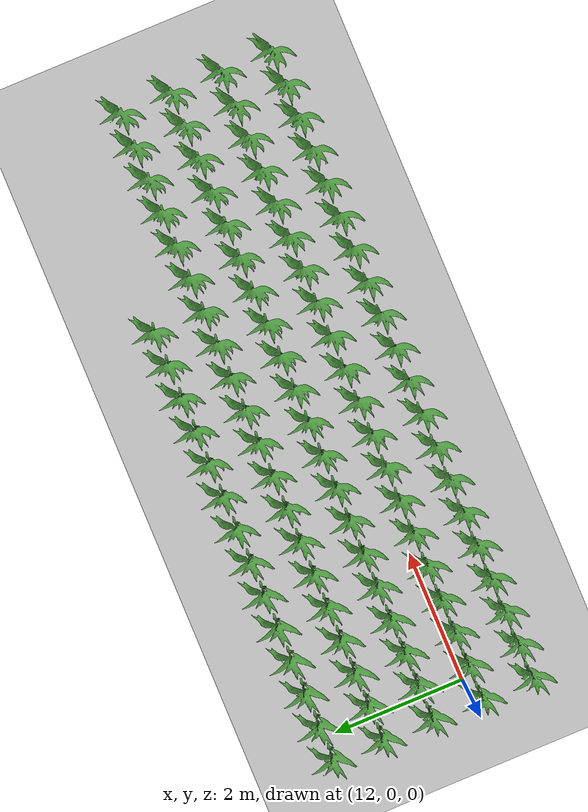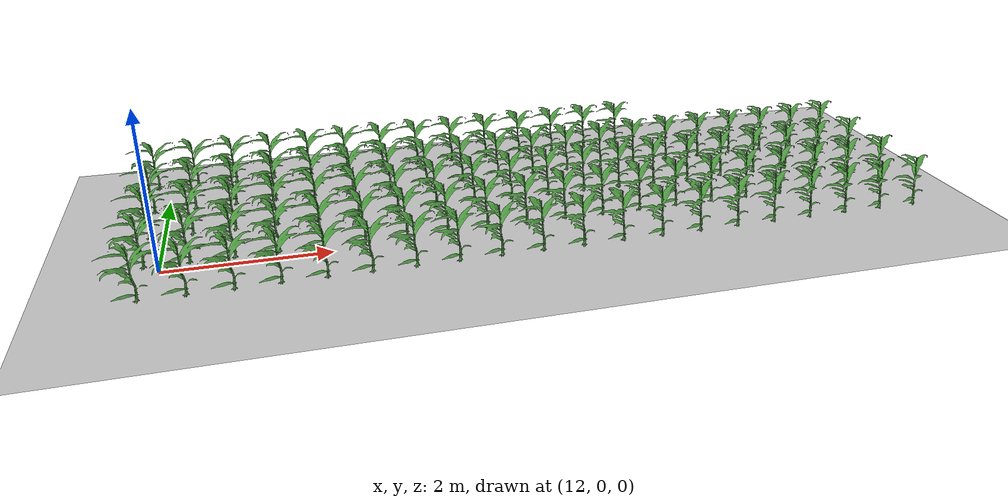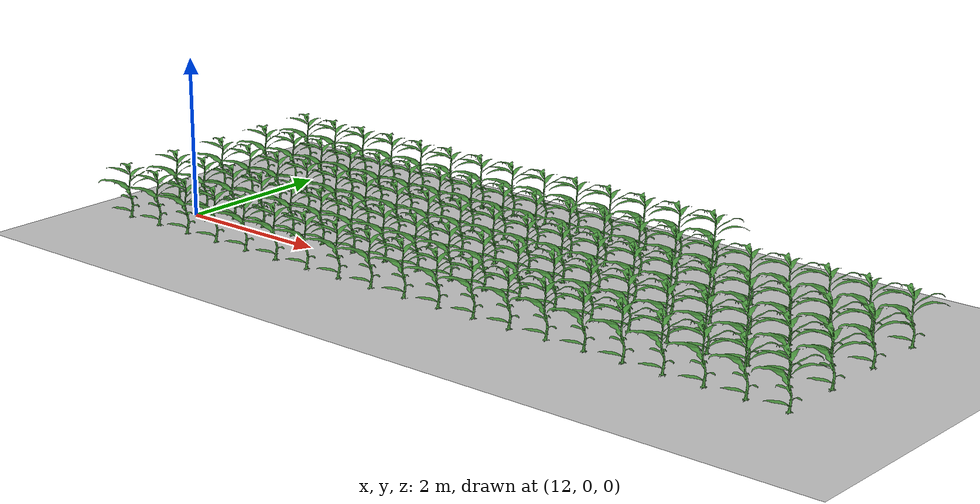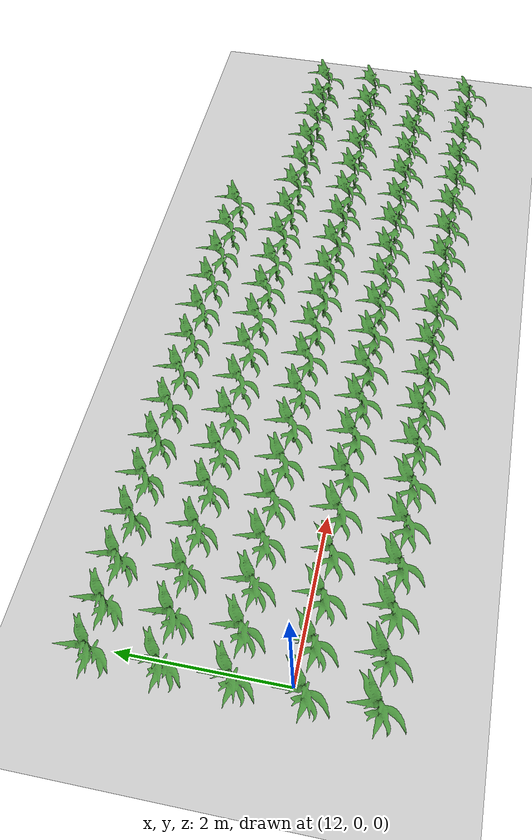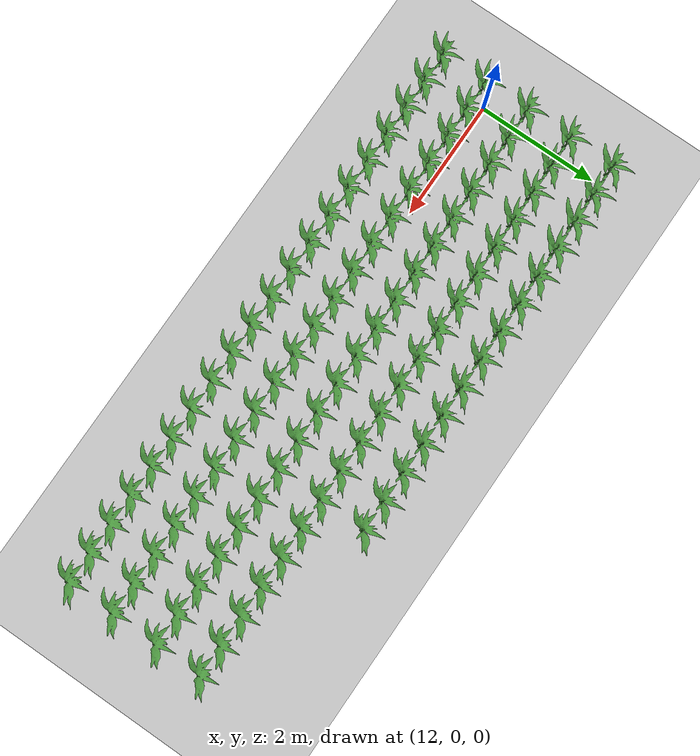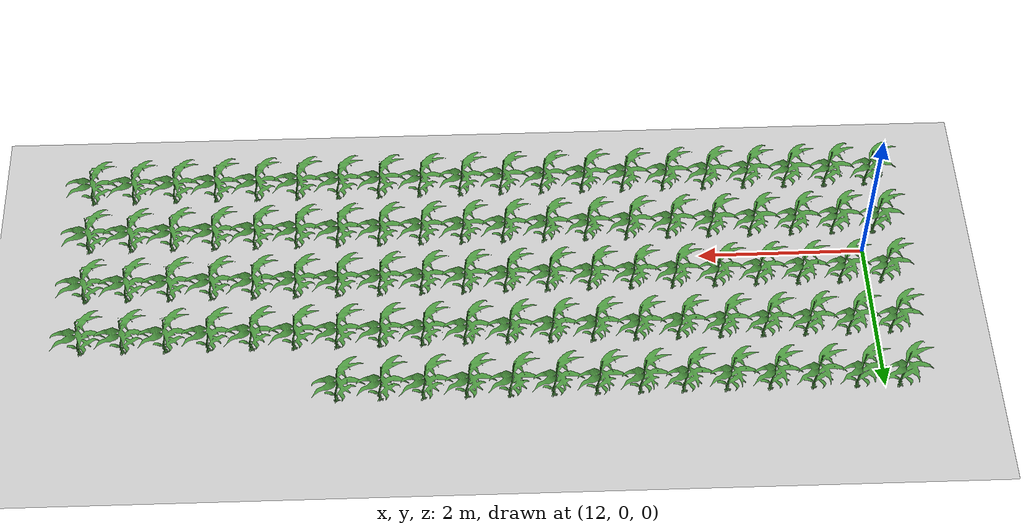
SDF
<sdf version="1.7">
 <world name="default">
  <model name="ground_plane">
   <static>1</static>
   <link name="link">
    <collision name="collision">
     <geometry><plane><normal>0 0 1</normal><size>100 100</size></plane></geometry>
     <surface>
      <contact><collide_bitmask>65535</collide_bitmask></contact>
      <friction><ode><mu>100</mu><mu2>50</mu2></ode></friction>
     </surface>
    </collision>
    <visual name="visual">
     <cast_shadows>0</cast_shadows>
     <geometry><plane><normal>0 0 1</normal><size>100 100</size></plane></geometry>
     <material>
      <script><uri>file://media/materials/scripts/gazebo.material</uri><name>Gazebo/Grey</name></script>
     </material>
    </visual>
   </link>
  </model>
  <model name="bush_1_nc_20">
   <static>1</static>
   <link name="link">
    <visual name="visual">
     <geometry>
      <mesh><uri>model://corn_stalk/meshes/corn_1.obj</uri><scale>0.002 0.002 0.001</scale></mesh>
     </geometry>
     <material>
      <script><uri>file://media/materials/scripts/gazebo.material</uri><name>Gazebo/Grass</name></script>
     </material>
    </visual>
   </link>
   <pose>10.0 0.762 0.171977 0 -0 0</pose>
  </model>
  <model name="bush_1_nc_21">
   <static>1</static>
   <link name="link">
    <visual name="visual">
     <geometry>
      <mesh><uri>model://corn_stalk/meshes/corn_1.obj</uri><scale>0.002 0.002 0.001</scale></mesh>
     </geometry>
     <material>
      <script><uri>file://media/materials/scripts/gazebo.material</uri><name>Gazebo/Grass</name></script>
     </material>
    </visual>
   </link>
   <pose>10.5 0.762 0.171977 0 -0 0</pose>
  </model>
  <model name="bush_1_nc_22">
   <static>1</static>
   <link name="link">
    <visual name="visual">
     <geometry>
      <mesh><uri>model://corn_stalk/meshes/corn_1.obj</uri><scale>0.002 0.002 0.001</scale></mesh>
     </geometry>
     <material>
      <script><uri>file://media/materials/scripts/gazebo.material</uri><name>Gazebo/Grass</name></script>
     </material>
    </visual>
   </link>
   <pose>11.0 0.762 0.171977 0 -0 0</pose>
  </model>
  <model name="bush_1_nc_23">
   <static>1</static>
   <link name="link">
    <visual name="visual">
     <geometry>
      <mesh><uri>model://corn_stalk/meshes/corn_1.obj</uri><scale>0.002 0.002 0.001</scale></mesh>
     </geometry>
     <material>
      <script><uri>file://media/materials/scripts/gazebo.material</uri><name>Gazebo/Grass</name></script>
     </material>
    </visual>
   </link>
   <pose>11.5 0.762 0.171977 0 -0 0</pose>
  </model>
  <model name="bush_1_nc_24">
   <static>1</static>
   <link name="link">
    <visual name="visual">
     <geometry>
      <mesh><uri>model://corn_stalk/meshes/corn_1.obj</uri><scale>0.002 0.002 0.001</scale></mesh>
     </geometry>
     <material>
      <script><uri>file://media/materials/scripts/gazebo.material</uri><name>Gazebo/Grass</name></script>
     </material>
    </visual>
   </link>
   <pose>12.0 0.762 0.171977 0 -0 0</pose>
  </model>
  <model name="bush_1_nc_25">
   <static>1</static>
   <link name="link">
    <visual name="visual">
     <geometry>
      <mesh><uri>model://corn_stalk/meshes/corn_1.obj</uri><scale>0.002 0.002 0.001</scale></mesh>
     </geometry>
     <material>
      <script><uri>file://media/materials/scripts/gazebo.material</uri><name>Gazebo/Grass</name></script>
     </material>
    </visual>
   </link>
   <pose>12.5 0.762 0.171977 0 -0 0</pose>
  </model>
  <model name="bush_1_nc_26">
   <static>1</static>
   <link name="link">
    <visual name="visual">
     <geometry>
      <mesh><uri>model://corn_stalk/meshes/corn_1.obj</uri><scale>0.002 0.002 0.001</scale></mesh>
     </geometry>
     <material>
      <script><uri>file://media/materials/scripts/gazebo.material</uri><name>Gazebo/Grass</name></script>
     </material>
    </visual>
   </link>
   <pose>13.0 0.762 0.171977 0 -0 0</pose>
  </model>
  <model name="bush_1_nc_27">
   <static>1</static>
   <link name="link">
    <visual name="visual">
     <geometry>
      <mesh><uri>model://corn_stalk/meshes/corn_1.obj</uri><scale>0.002 0.002 0.001</scale></mesh>
     </geometry>
     <material>
      <script><uri>file://media/materials/scripts/gazebo.material</uri><name>Gazebo/Grass</name></script>
     </material>
    </visual>
   </link>
   <pose>13.5 0.762 0.171977 0 -0 0</pose>
  </model>
  <model name="bush_1_nc_28">
   <static>1</static>
   <link name="link">
    <visual name="visual">
     <geometry>
      <mesh><uri>model://corn_stalk/meshes/corn_1.obj</uri><scale>0.002 0.002 0.001</scale></mesh>
     </geometry>
     <material>
      <script><uri>file://media/materials/scripts/gazebo.material</uri><name>Gazebo/Grass</name></script>
     </material>
    </visual>
   </link>
   <pose>14.0 0.762 0.171977 0 -0 0</pose>
  </model>
  <model name="bush_1_nc_29">
   <static>1</static>
   <link name="link">
    <visual name="visual">
     <geometry>
      <mesh><uri>model://corn_stalk/meshes/corn_1.obj</uri><scale>0.002 0.002 0.001</scale></mesh>
     </geometry>
     <material>
      <script><uri>file://media/materials/scripts/gazebo.material</uri><name>Gazebo/Grass</name></script>
     </material>
    </visual>
   </link>
   <pose>14.5 0.762 0.171977 0 -0 0</pose>
  </model>
  <model name="bush_1_nc_30">
   <static>1</static>
   <link name="link">
    <visual name="visual">
     <geometry>
      <mesh><uri>model://corn_stalk/meshes/corn_1.obj</uri><scale>0.002 0.002 0.001</scale></mesh>
     </geometry>
     <material>
      <script><uri>file://media/materials/scripts/gazebo.material</uri><name>Gazebo/Grass</name></script>
     </material>
    </visual>
   </link>
   <pose>15.0 0.762 0.171977 0 -0 0</pose>
  </model>
  <model name="bush_1_nc_31">
   <static>1</static>
   <link name="link">
    <visual name="visual">
     <geometry>
      <mesh><uri>model://corn_stalk/meshes/corn_1.obj</uri><scale>0.002 0.002 0.001</scale></mesh>
     </geometry>
     <material>
      <script><uri>file://media/materials/scripts/gazebo.material</uri><name>Gazebo/Grass</name></script>
     </material>
    </visual>
   </link>
   <pose>15.5 0.762 0.171977 0 -0 0</pose>
  </model>
  <model name="bush_1_nc_32">
   <static>1</static>
   <link name="link">
    <visual name="visual">
     <geometry>
      <mesh><uri>model://corn_stalk/meshes/corn_1.obj</uri><scale>0.002 0.002 0.001</scale></mesh>
     </geometry>
     <material>
      <script><uri>file://media/materials/scripts/gazebo.material</uri><name>Gazebo/Grass</name></script>
     </material>
    </visual>
   </link>
   <pose>16.0 0.762 0.171977 0 -0 0</pose>
  </model>
  <model name="bush_1_nc_33">
   <static>1</static>
   <link name="link">
    <visual name="visual">
     <geometry>
      <mesh><uri>model://corn_stalk/meshes/corn_1.obj</uri><scale>0.002 0.002 0.001</scale></mesh>
     </geometry>
     <material>
      <script><uri>file://media/materials/scripts/gazebo.material</uri><name>Gazebo/Grass</name></script>
     </material>
    </visual>
   </link>
   <pose>16.5 0.762 0.171977 0 -0 0</pose>
  </model>
  <model name="bush_1_nc_34">
   <static>1</static>
   <link name="link">
    <visual name="visual">
     <geometry>
      <mesh><uri>model://corn_stalk/meshes/corn_1.obj</uri><scale>0.002 0.002 0.001</scale></mesh>
     </geometry>
     <material>
      <script><uri>file://media/materials/scripts/gazebo.material</uri><name>Gazebo/Grass</name></script>
     </material>
    </visual>
   </link>
   <pose>17.0 0.762 0.171977 0 -0 0</pose>
  </model>
  <model name="bush_1_nc_35">
   <static>1</static>
   <link name="link">
    <visual name="visual">
     <geometry>
      <mesh><uri>model://corn_stalk/meshes/corn_1.obj</uri><scale>0.002 0.002 0.001</scale></mesh>
     </geometry>
     <material>
      <script><uri>file://media/materials/scripts/gazebo.material</uri><name>Gazebo/Grass</name></script>
     </material>
    </visual>
   </link>
   <pose>17.5 0.762 0.171977 0 -0 0</pose>
  </model>
  <model name="bush_1_nc_36">
   <static>1</static>
   <link name="link">
    <visual name="visual">
     <geometry>
      <mesh><uri>model://corn_stalk/meshes/corn_1.obj</uri><scale>0.002 0.002 0.001</scale></mesh>
     </geometry>
     <material>
      <script><uri>file://media/materials/scripts/gazebo.material</uri><name>Gazebo/Grass</name></script>
     </material>
    </visual>
   </link>
   <pose>18.0 0.762 0.171977 0 -0 0</pose>
  </model>
  <model name="bush_1_nc_37">
   <static>1</static>
   <link name="link">
    <visual name="visual">
     <geometry>
      <mesh><uri>model://corn_stalk/meshes/corn_1.obj</uri><scale>0.002 0.002 0.001</scale></mesh>
     </geometry>
     <material>
      <script><uri>file://media/materials/scripts/gazebo.material</uri><name>Gazebo/Grass</name></script>
     </material>
    </visual>
   </link>
   <pose>18.5 0.762 0.171977 0 -0 0</pose>
  </model>
  <model name="bush_1_nc_38">
   <static>1</static>
   <link name="link">
    <visual name="visual">
     <geometry>
      <mesh><uri>model://corn_stalk/meshes/corn_1.obj</uri><scale>0.002 0.002 0.001</scale></mesh>
     </geometry>
     <material>
      <script><uri>file://media/materials/scripts/gazebo.material</uri><name>Gazebo/Grass</name></script>
     </material>
    </visual>
   </link>
   <pose>19.0 0.762 0.171977 0 -0 0</pose>
  </model>
  <model name="bush_1_nc_39">
   <static>1</static>
   <link name="link">
    <visual name="visual">
     <geometry>
      <mesh><uri>model://corn_stalk/meshes/corn_1.obj</uri><scale>0.002 0.002 0.001</scale></mesh>
     </geometry>
     <material>
      <script><uri>file://media/materials/scripts/gazebo.material</uri><name>Gazebo/Grass</name></script>
     </material>
    </visual>
   </link>
   <pose>19.5 0.762 0.171977 0 -0 0</pose>
  </model>
  <model name="bush_1_nc_60">
   <static>1</static>
   <link name="link">
    <visual name="visual">
     <geometry>
      <mesh><uri>model://corn_stalk/meshes/corn_1.obj</uri><scale>0.002 0.002 0.001</scale></mesh>
     </geometry>
     <material>
      <script><uri>file://media/materials/scripts/gazebo.material</uri><name>Gazebo/Grass</name></script>
     </material>
    </visual>
   </link>
   <pose>10.0 1.524 0.171977 0 -0 0</pose>
  </model>
  <model name="bush_1_nc_61">
   <static>1</static>
   <link name="link">
    <visual name="visual">
     <geometry>
      <mesh><uri>model://corn_stalk/meshes/corn_1.obj</uri><scale>0.002 0.002 0.001</scale></mesh>
     </geometry>
     <material>
      <script><uri>file://media/materials/scripts/gazebo.material</uri><name>Gazebo/Grass</name></script>
     </material>
    </visual>
   </link>
   <pose>10.5 1.524 0.171977 0 -0 0</pose>
  </model>
  <model name="bush_1_nc_62">
   <static>1</static>
   <link name="link">
    <visual name="visual">
     <geometry>
      <mesh><uri>model://corn_stalk/meshes/corn_1.obj</uri><scale>0.002 0.002 0.001</scale></mesh>
     </geometry>
     <material>
      <script><uri>file://media/materials/scripts/gazebo.material</uri><name>Gazebo/Grass</name></script>
     </material>
    </visual>
   </link>
   <pose>11.0 1.524 0.171977 0 -0 0</pose>
  </model>
  <model name="bush_1_nc_63">
   <static>1</static>
   <link name="link">
    <visual name="visual">
     <geometry>
      <mesh><uri>model://corn_stalk/meshes/corn_1.obj</uri><scale>0.002 0.002 0.001</scale></mesh>
     </geometry>
     <material>
      <script><uri>file://media/materials/scripts/gazebo.material</uri><name>Gazebo/Grass</name></script>
     </material>
    </visual>
   </link>
   <pose>11.5 1.524 0.171977 0 -0 0</pose>
  </model>
  <model name="bush_1_nc_64">
   <static>1</static>
   <link name="link">
    <visual name="visual">
     <geometry>
      <mesh><uri>model://corn_stalk/meshes/corn_1.obj</uri><scale>0.002 0.002 0.001</scale></mesh>
     </geometry>
     <material>
      <script><uri>file://media/materials/scripts/gazebo.material</uri><name>Gazebo/Grass</name></script>
     </material>
    </visual>
   </link>
   <pose>12.0 1.524 0.171977 0 -0 0</pose>
  </model>
  <model name="bush_1_nc_65">
   <static>1</static>
   <link name="link">
    <visual name="visual">
     <geometry>
      <mesh><uri>model://corn_stalk/meshes/corn_1.obj</uri><scale>0.002 0.002 0.001</scale></mesh>
     </geometry>
     <material>
      <script><uri>file://media/materials/scripts/gazebo.material</uri><name>Gazebo/Grass</name></script>
     </material>
    </visual>
   </link>
   <pose>12.5 1.524 0.171977 0 -0 0</pose>
  </model>
  <model name="bush_1_nc_66">
   <static>1</static>
   <link name="link">
    <visual name="visual">
     <geometry>
      <mesh><uri>model://corn_stalk/meshes/corn_1.obj</uri><scale>0.002 0.002 0.001</scale></mesh>
     </geometry>
     <material>
      <script><uri>file://media/materials/scripts/gazebo.material</uri><name>Gazebo/Grass</name></script>
     </material>
    </visual>
   </link>
   <pose>13.0 1.524 0.171977 0 -0 0</pose>
  </model>
  <model name="bush_1_nc_67">
   <static>1</static>
   <link name="link">
    <visual name="visual">
     <geometry>
      <mesh><uri>model://corn_stalk/meshes/corn_1.obj</uri><scale>0.002 0.002 0.001</scale></mesh>
     </geometry>
     <material>
      <script><uri>file://media/materials/scripts/gazebo.material</uri><name>Gazebo/Grass</name></script>
     </material>
    </visual>
   </link>
   <pose>13.5 1.524 0.171977 0 -0 0</pose>
  </model>
  <model name="bush_1_nc_68">
   <static>1</static>
   <link name="link">
    <visual name="visual">
     <geometry>
      <mesh><uri>model://corn_stalk/meshes/corn_1.obj</uri><scale>0.002 0.002 0.001</scale></mesh>
     </geometry>
     <material>
      <script><uri>file://media/materials/scripts/gazebo.material</uri><name>Gazebo/Grass</name></script>
     </material>
    </visual>
   </link>
   <pose>14.0 1.524 0.171977 0 -0 0</pose>
  </model>
  <model name="bush_1_nc_69">
   <static>1</static>
   <link name="link">
    <visual name="visual">
     <geometry>
      <mesh><uri>model://corn_stalk/meshes/corn_1.obj</uri><scale>0.002 0.002 0.001</scale></mesh>
     </geometry>
     <material>
      <script><uri>file://media/materials/scripts/gazebo.material</uri><name>Gazebo/Grass</name></script>
     </material>
    </visual>
   </link>
   <pose>14.5 1.524 0.171977 0 -0 0</pose>
  </model>
  <model name="bush_1_nc_70">
   <static>1</static>
   <link name="link">
    <visual name="visual">
     <geometry>
      <mesh><uri>model://corn_stalk/meshes/corn_1.obj</uri><scale>0.002 0.002 0.001</scale></mesh>
     </geometry>
     <material>
      <script><uri>file://media/materials/scripts/gazebo.material</uri><name>Gazebo/Grass</name></script>
     </material>
    </visual>
   </link>
   <pose>15.0 1.524 0.171977 0 -0 0</pose>
  </model>
  <model name="bush_1_nc_71">
   <static>1</static>
   <link name="link">
    <visual name="visual">
     <geometry>
      <mesh><uri>model://corn_stalk/meshes/corn_1.obj</uri><scale>0.002 0.002 0.001</scale></mesh>
     </geometry>
     <material>
      <script><uri>file://media/materials/scripts/gazebo.material</uri><name>Gazebo/Grass</name></script>
     </material>
    </visual>
   </link>
   <pose>15.5 1.524 0.171977 0 -0 0</pose>
  </model>
  <model name="bush_1_nc_72">
   <static>1</static>
   <link name="link">
    <visual name="visual">
     <geometry>
      <mesh><uri>model://corn_stalk/meshes/corn_1.obj</uri><scale>0.002 0.002 0.001</scale></mesh>
     </geometry>
     <material>
      <script><uri>file://media/materials/scripts/gazebo.material</uri><name>Gazebo/Grass</name></script>
     </material>
    </visual>
   </link>
   <pose>16.0 1.524 0.171977 0 -0 0</pose>
  </model>
  <model name="bush_1_nc_73">
   <static>1</static>
   <link name="link">
    <visual name="visual">
     <geometry>
      <mesh><uri>model://corn_stalk/meshes/corn_1.obj</uri><scale>0.002 0.002 0.001</scale></mesh>
     </geometry>
     <material>
      <script><uri>file://media/materials/scripts/gazebo.material</uri><name>Gazebo/Grass</name></script>
     </material>
    </visual>
   </link>
   <pose>16.5 1.524 0.171977 0 -0 0</pose>
  </model>
  <model name="bush_1_nc_74">
   <static>1</static>
   <link name="link">
    <visual name="visual">
     <geometry>
      <mesh><uri>model://corn_stalk/meshes/corn_1.obj</uri><scale>0.002 0.002 0.001</scale></mesh>
     </geometry>
     <material>
      <script><uri>file://media/materials/scripts/gazebo.material</uri><name>Gazebo/Grass</name></script>
     </material>
    </visual>
   </link>
   <pose>17.0 1.524 0.171977 0 -0 0</pose>
  </model>
  <model name="bush_1_nc_75">
   <static>1</static>
   <link name="link">
    <visual name="visual">
     <geometry>
      <mesh><uri>model://corn_stalk/meshes/corn_1.obj</uri><scale>0.002 0.002 0.001</scale></mesh>
     </geometry>
     <material>
      <script><uri>file://media/materials/scripts/gazebo.material</uri><name>Gazebo/Grass</name></script>
     </material>
    </visual>
   </link>
   <pose>17.5 1.524 0.171977 0 -0 0</pose>
  </model>
  <model name="bush_1_nc_76">
   <static>1</static>
   <link name="link">
    <visual name="visual">
     <geometry>
      <mesh><uri>model://corn_stalk/meshes/corn_1.obj</uri><scale>0.002 0.002 0.001</scale></mesh>
     </geometry>
     <material>
      <script><uri>file://media/materials/scripts/gazebo.material</uri><name>Gazebo/Grass</name></script>
     </material>
    </visual>
   </link>
   <pose>18.0 1.524 0.171977 0 -0 0</pose>
  </model>
  <model name="bush_1_nc_77">
   <static>1</static>
   <link name="link">
    <visual name="visual">
     <geometry>
      <mesh><uri>model://corn_stalk/meshes/corn_1.obj</uri><scale>0.002 0.002 0.001</scale></mesh>
     </geometry>
     <material>
      <script><uri>file://media/materials/scripts/gazebo.material</uri><name>Gazebo/Grass</name></script>
     </material>
    </visual>
   </link>
   <pose>18.5 1.524 0.171977 0 -0 0</pose>
  </model>
  <model name="bush_1_nc_78">
   <static>1</static>
   <link name="link">
    <visual name="visual">
     <geometry>
      <mesh><uri>model://corn_stalk/meshes/corn_1.obj</uri><scale>0.002 0.002 0.001</scale></mesh>
     </geometry>
     <material>
      <script><uri>file://media/materials/scripts/gazebo.material</uri><name>Gazebo/Grass</name></script>
     </material>
    </visual>
   </link>
   <pose>19.0 1.524 0.171977 0 -0 0</pose>
  </model>
  <model name="bush_1_nc_79">
   <static>1</static>
   <link name="link">
    <visual name="visual">
     <geometry>
      <mesh><uri>model://corn_stalk/meshes/corn_1.obj</uri><scale>0.002 0.002 0.001</scale></mesh>
     </geometry>
     <material>
      <script><uri>file://media/materials/scripts/gazebo.material</uri><name>Gazebo/Grass</name></script>
     </material>
    </visual>
   </link>
   <pose>19.5 1.524 0.171977 0 -0 0</pose>
  </model>
  <model name="bush_1_nc_100">
   <static>1</static>
   <link name="link">
    <visual name="visual">
     <geometry>
      <mesh><uri>model://corn_stalk/meshes/corn_1.obj</uri><scale>0.002 0.002 0.001</scale></mesh>
     </geometry>
     <material>
      <script><uri>file://media/materials/scripts/gazebo.material</uri><name>Gazebo/Grass</name></script>
     </material>
    </visual>
   </link>
   <pose>10.0 2.286 0.171977 0 -0 0</pose>
  </model>
  <model name="bush_1_nc_101">
   <static>1</static>
   <link name="link">
    <visual name="visual">
     <geometry>
      <mesh><uri>model://corn_stalk/meshes/corn_1.obj</uri><scale>0.002 0.002 0.001</scale></mesh>
     </geometry>
     <material>
      <script><uri>file://media/materials/scripts/gazebo.material</uri><name>Gazebo/Grass</name></script>
     </material>
    </visual>
   </link>
   <pose>10.5 2.286 0.171977 0 -0 0</pose>
  </model>
  <model name="bush_1_nc_102">
   <static>1</static>
   <link name="link">
    <visual name="visual">
     <geometry>
      <mesh><uri>model://corn_stalk/meshes/corn_1.obj</uri><scale>0.002 0.002 0.001</scale></mesh>
     </geometry>
     <material>
      <script><uri>file://media/materials/scripts/gazebo.material</uri><name>Gazebo/Grass</name></script>
     </material>
    </visual>
   </link>
   <pose>11.0 2.286 0.171977 0 -0 0</pose>
  </model>
  <model name="bush_1_nc_103">
   <static>1</static>
   <link name="link">
    <visual name="visual">
     <geometry>
      <mesh><uri>model://corn_stalk/meshes/corn_1.obj</uri><scale>0.002 0.002 0.001</scale></mesh>
     </geometry>
     <material>
      <script><uri>file://media/materials/scripts/gazebo.material</uri><name>Gazebo/Grass</name></script>
     </material>
    </visual>
   </link>
   <pose>11.5 2.286 0.171977 0 -0 0</pose>
  </model>
  <model name="bush_1_nc_104">
   <static>1</static>
   <link name="link">
    <visual name="visual">
     <geometry>
      <mesh><uri>model://corn_stalk/meshes/corn_1.obj</uri><scale>0.002 0.002 0.001</scale></mesh>
     </geometry>
     <material>
      <script><uri>file://media/materials/scripts/gazebo.material</uri><name>Gazebo/Grass</name></script>
     </material>
    </visual>
   </link>
   <pose>12.0 2.286 0.171977 0 -0 0</pose>
  </model>
  <model name="bush_1_nc_105">
   <static>1</static>
   <link name="link">
    <visual name="visual">
     <geometry>
      <mesh><uri>model://corn_stalk/meshes/corn_1.obj</uri><scale>0.002 0.002 0.001</scale></mesh>
     </geometry>
     <material>
      <script><uri>file://media/materials/scripts/gazebo.material</uri><name>Gazebo/Grass</name></script>
     </material>
    </visual>
   </link>
   <pose>12.5 2.286 0.171977 0 -0 0</pose>
  </model>
  <model name="bush_1_nc_106">
   <static>1</static>
   <link name="link">
    <visual name="visual">
     <geometry>
      <mesh><uri>model://corn_stalk/meshes/corn_1.obj</uri><scale>0.002 0.002 0.001</scale></mesh>
     </geometry>
     <material>
      <script><uri>file://media/materials/scripts/gazebo.material</uri><name>Gazebo/Grass</name></script>
     </material>
    </visual>
   </link>
   <pose>13.0 2.286 0.171977 0 -0 0</pose>
  </model>
  <model name="bush_1_nc_107">
   <static>1</static>
   <link name="link">
    <visual name="visual">
     <geometry>
      <mesh><uri>model://corn_stalk/meshes/corn_1.obj</uri><scale>0.002 0.002 0.001</scale></mesh>
     </geometry>
     <material>
      <script><uri>file://media/materials/scripts/gazebo.material</uri><name>Gazebo/Grass</name></script>
     </material>
    </visual>
   </link>
   <pose>13.5 2.286 0.171977 0 -0 0</pose>
  </model>
  <model name="bush_1_nc_108">
   <static>1</static>
   <link name="link">
    <visual name="visual">
     <geometry>
      <mesh><uri>model://corn_stalk/meshes/corn_1.obj</uri><scale>0.002 0.002 0.001</scale></mesh>
     </geometry>
     <material>
      <script><uri>file://media/materials/scripts/gazebo.material</uri><name>Gazebo/Grass</name></script>
     </material>
    </visual>
   </link>
   <pose>14.0 2.286 0.171977 0 -0 0</pose>
  </model>
  <model name="bush_1_nc_109">
   <static>1</static>
   <link name="link">
    <visual name="visual">
     <geometry>
      <mesh><uri>model://corn_stalk/meshes/corn_1.obj</uri><scale>0.002 0.002 0.001</scale></mesh>
     </geometry>
     <material>
      <script><uri>file://media/materials/scripts/gazebo.material</uri><name>Gazebo/Grass</name></script>
     </material>
    </visual>
   </link>
   <pose>14.5 2.286 0.171977 0 -0 0</pose>
  </model>
  <model name="bush_1_nc_110">
   <static>1</static>
   <link name="link">
    <visual name="visual">
     <geometry>
      <mesh><uri>model://corn_stalk/meshes/corn_1.obj</uri><scale>0.002 0.002 0.001</scale></mesh>
     </geometry>
     <material>
      <script><uri>file://media/materials/scripts/gazebo.material</uri><name>Gazebo/Grass</name></script>
     </material>
    </visual>
   </link>
   <pose>15.0 2.286 0.171977 0 -0 0</pose>
  </model>
  <model name="bush_1_nc_111">
   <static>1</static>
   <link name="link">
    <visual name="visual">
     <geometry>
      <mesh><uri>model://corn_stalk/meshes/corn_1.obj</uri><scale>0.002 0.002 0.001</scale></mesh>
     </geometry>
     <material>
      <script><uri>file://media/materials/scripts/gazebo.material</uri><name>Gazebo/Grass</name></script>
     </material>
    </visual>
   </link>
   <pose>15.5 2.286 0.171977 0 -0 0</pose>
  </model>
  <model name="bush_1_nc_112">
   <static>1</static>
   <link name="link">
    <visual name="visual">
     <geometry>
      <mesh><uri>model://corn_stalk/meshes/corn_1.obj</uri><scale>0.002 0.002 0.001</scale></mesh>
     </geometry>
     <material>
      <script><uri>file://media/materials/scripts/gazebo.material</uri><name>Gazebo/Grass</name></script>
     </material>
    </visual>
   </link>
   <pose>16.0 2.286 0.171977 0 -0 0</pose>
  </model>
  <model name="bush_1_nc_113">
   <static>1</static>
   <link name="link">
    <visual name="visual">
     <geometry>
      <mesh><uri>model://corn_stalk/meshes/corn_1.obj</uri><scale>0.002 0.002 0.001</scale></mesh>
     </geometry>
     <material>
      <script><uri>file://media/materials/scripts/gazebo.material</uri><name>Gazebo/Grass</name></script>
     </material>
    </visual>
   </link>
   <pose>16.5 2.286 0.171977 0 -0 0</pose>
  </model>
  <model name="bush_1_nc_114">
   <static>1</static>
   <link name="link">
    <visual name="visual">
     <geometry>
      <mesh><uri>model://corn_stalk/meshes/corn_1.obj</uri><scale>0.002 0.002 0.001</scale></mesh>
     </geometry>
     <material>
      <script><uri>file://media/materials/scripts/gazebo.material</uri><name>Gazebo/Grass</name></script>
     </material>
    </visual>
   </link>
   <pose>17.0 2.286 0.171977 0 -0 0</pose>
  </model>
  <model name="bush_1_nc_115">
   <static>1</static>
   <link name="link">
    <visual name="visual">
     <geometry>
      <mesh><uri>model://corn_stalk/meshes/corn_1.obj</uri><scale>0.002 0.002 0.001</scale></mesh>
     </geometry>
     <material>
      <script><uri>file://media/materials/scripts/gazebo.material</uri><name>Gazebo/Grass</name></script>
     </material>
    </visual>
   </link>
   <pose>17.5 2.286 0.171977 0 -0 0</pose>
  </model>
  <model name="bush_1_nc_116">
   <static>1</static>
   <link name="link">
    <visual name="visual">
     <geometry>
      <mesh><uri>model://corn_stalk/meshes/corn_1.obj</uri><scale>0.002 0.002 0.001</scale></mesh>
     </geometry>
     <material>
      <script><uri>file://media/materials/scripts/gazebo.material</uri><name>Gazebo/Grass</name></script>
     </material>
    </visual>
   </link>
   <pose>18.0 2.286 0.171977 0 -0 0</pose>
  </model>
  <model name="bush_1_nc_117">
   <static>1</static>
   <link name="link">
    <visual name="visual">
     <geometry>
      <mesh><uri>model://corn_stalk/meshes/corn_1.obj</uri><scale>0.002 0.002 0.001</scale></mesh>
     </geometry>
     <material>
      <script><uri>file://media/materials/scripts/gazebo.material</uri><name>Gazebo/Grass</name></script>
     </material>
    </visual>
   </link>
   <pose>18.5 2.286 0.171977 0 -0 0</pose>
  </model>
  <model name="bush_1_nc_118">
   <static>1</static>
   <link name="link">
    <visual name="visual">
     <geometry>
      <mesh><uri>model://corn_stalk/meshes/corn_1.obj</uri><scale>0.002 0.002 0.001</scale></mesh>
     </geometry>
     <material>
      <script><uri>file://media/materials/scripts/gazebo.material</uri><name>Gazebo/Grass</name></script>
     </material>
    </visual>
   </link>
   <pose>19.0 2.286 0.171977 0 -0 0</pose>
  </model>
  <model name="bush_1_nc_119">
   <static>1</static>
   <link name="link">
    <visual name="visual">
     <geometry>
      <mesh><uri>model://corn_stalk/meshes/corn_1.obj</uri><scale>0.002 0.002 0.001</scale></mesh>
     </geometry>
     <material>
      <script><uri>file://media/materials/scripts/gazebo.material</uri><name>Gazebo/Grass</name></script>
     </material>
    </visual>
   </link>
   <pose>19.5 2.286 0.171977 0 -0 0</pose>
  </model>
  <model name="bush_1_nc_140">
   <static>1</static>
   <link name="link">
    <visual name="visual">
     <geometry>
      <mesh><uri>model://corn_stalk/meshes/corn_1.obj</uri><scale>0.002 0.002 0.001</scale></mesh>
     </geometry>
     <material>
      <script><uri>file://media/materials/scripts/gazebo.material</uri><name>Gazebo/Grass</name></script>
     </material>
    </visual>
   </link>
   <pose>10.0 3.048 0.171977 0 -0 0</pose>
  </model>
  <model name="bush_1_nc_141">
   <static>1</static>
   <link name="link">
    <visual name="visual">
     <geometry>
      <mesh><uri>model://corn_stalk/meshes/corn_1.obj</uri><scale>0.002 0.002 0.001</scale></mesh>
     </geometry>
     <material>
      <script><uri>file://media/materials/scripts/gazebo.material</uri><name>Gazebo/Grass</name></script>
     </material>
    </visual>
   </link>
   <pose>10.5 3.048 0.171977 0 -0 0</pose>
  </model>
  <model name="bush_1_nc_142">
   <static>1</static>
   <link name="link">
    <visual name="visual">
     <geometry>
      <mesh><uri>model://corn_stalk/meshes/corn_1.obj</uri><scale>0.002 0.002 0.001</scale></mesh>
     </geometry>
     <material>
      <script><uri>file://media/materials/scripts/gazebo.material</uri><name>Gazebo/Grass</name></script>
     </material>
    </visual>
   </link>
   <pose>11.0 3.048 0.171977 0 -0 0</pose>
  </model>
  <model name="bush_1_nc_143">
   <static>1</static>
   <link name="link">
    <visual name="visual">
     <geometry>
      <mesh><uri>model://corn_stalk/meshes/corn_1.obj</uri><scale>0.002 0.002 0.001</scale></mesh>
     </geometry>
     <material>
      <script><uri>file://media/materials/scripts/gazebo.material</uri><name>Gazebo/Grass</name></script>
     </material>
    </visual>
   </link>
   <pose>11.5 3.048 0.171977 0 -0 0</pose>
  </model>
  <model name="bush_1_nc_144">
   <static>1</static>
   <link name="link">
    <visual name="visual">
     <geometry>
      <mesh><uri>model://corn_stalk/meshes/corn_1.obj</uri><scale>0.002 0.002 0.001</scale></mesh>
     </geometry>
     <material>
      <script><uri>file://media/materials/scripts/gazebo.material</uri><name>Gazebo/Grass</name></script>
     </material>
    </visual>
   </link>
   <pose>12.0 3.048 0.171977 0 -0 0</pose>
  </model>
  <model name="bush_1_nc_145">
   <static>1</static>
   <link name="link">
    <visual name="visual">
     <geometry>
      <mesh><uri>model://corn_stalk/meshes/corn_1.obj</uri><scale>0.002 0.002 0.001</scale></mesh>
     </geometry>
     <material>
      <script><uri>file://media/materials/scripts/gazebo.material</uri><name>Gazebo/Grass</name></script>
     </material>
    </visual>
   </link>
   <pose>12.5 3.048 0.171977 0 -0 0</pose>
  </model>
  <model name="bush_1_nc_146">
   <static>1</static>
   <link name="link">
    <visual name="visual">
     <geometry>
      <mesh><uri>model://corn_stalk/meshes/corn_1.obj</uri><scale>0.002 0.002 0.001</scale></mesh>
     </geometry>
     <material>
      <script><uri>file://media/materials/scripts/gazebo.material</uri><name>Gazebo/Grass</name></script>
     </material>
    </visual>
   </link>
   <pose>13.0 3.048 0.171977 0 -0 0</pose>
  </model>
  <model name="bush_1_nc_147">
   <static>1</static>
   <link name="link">
    <visual name="visual">
     <geometry>
      <mesh><uri>model://corn_stalk/meshes/corn_1.obj</uri><scale>0.002 0.002 0.001</scale></mesh>
     </geometry>
     <material>
      <script><uri>file://media/materials/scripts/gazebo.material</uri><name>Gazebo/Grass</name></script>
     </material>
    </visual>
   </link>
   <pose>13.5 3.048 0.171977 0 -0 0</pose>
  </model>
  <model name="bush_1_nc_148">
   <static>1</static>
   <link name="link">
    <visual name="visual">
     <geometry>
      <mesh><uri>model://corn_stalk/meshes/corn_1.obj</uri><scale>0.002 0.002 0.001</scale></mesh>
     </geometry>
     <material>
      <script><uri>file://media/materials/scripts/gazebo.material</uri><name>Gazebo/Grass</name></script>
     </material>
    </visual>
   </link>
   <pose>14.0 3.048 0.171977 0 -0 0</pose>
  </model>
  <model name="bush_1_nc_149">
   <static>1</static>
   <link name="link">
    <visual name="visual">
     <geometry>
      <mesh><uri>model://corn_stalk/meshes/corn_1.obj</uri><scale>0.002 0.002 0.001</scale></mesh>
     </geometry>
     <material>
      <script><uri>file://media/materials/scripts/gazebo.material</uri><name>Gazebo/Grass</name></script>
     </material>
    </visual>
   </link>
   <pose>14.5 3.048 0.171977 0 -0 0</pose>
  </model>
  <model name="bush_1_nc_150">
   <static>1</static>
   <link name="link">
    <visual name="visual">
     <geometry>
      <mesh><uri>model://corn_stalk/meshes/corn_1.obj</uri><scale>0.002 0.002 0.001</scale></mesh>
     </geometry>
     <material>
      <script><uri>file://media/materials/scripts/gazebo.material</uri><name>Gazebo/Grass</name></script>
     </material>
    </visual>
   </link>
   <pose>15.0 3.048 0.171977 0 -0 0</pose>
  </model>
  <model name="bush_1_nc_151">
   <static>1</static>
   <link name="link">
    <visual name="visual">
     <geometry>
      <mesh><uri>model://corn_stalk/meshes/corn_1.obj</uri><scale>0.002 0.002 0.001</scale></mesh>
     </geometry>
     <material>
      <script><uri>file://media/materials/scripts/gazebo.material</uri><name>Gazebo/Grass</name></script>
     </material>
    </visual>
   </link>
   <pose>15.5 3.048 0.171977 0 -0 0</pose>
  </model>
  <model name="bush_1_nc_152">
   <static>1</static>
   <link name="link">
    <visual name="visual">
     <geometry>
      <mesh><uri>model://corn_stalk/meshes/corn_1.obj</uri><scale>0.002 0.002 0.001</scale></mesh>
     </geometry>
     <material>
      <script><uri>file://media/materials/scripts/gazebo.material</uri><name>Gazebo/Grass</name></script>
     </material>
    </visual>
   </link>
   <pose>16.0 3.048 0.171977 0 -0 0</pose>
  </model>
  <model name="bush_1_nc_153">
   <static>1</static>
   <link name="link">
    <visual name="visual">
     <geometry>
      <mesh><uri>model://corn_stalk/meshes/corn_1.obj</uri><scale>0.002 0.002 0.001</scale></mesh>
     </geometry>
     <material>
      <script><uri>file://media/materials/scripts/gazebo.material</uri><name>Gazebo/Grass</name></script>
     </material>
    </visual>
   </link>
   <pose>16.5 3.048 0.171977 0 -0 0</pose>
  </model>
  <model name="bush_1_nc_154">
   <static>1</static>
   <link name="link">
    <visual name="visual">
     <geometry>
      <mesh><uri>model://corn_stalk/meshes/corn_1.obj</uri><scale>0.002 0.002 0.001</scale></mesh>
     </geometry>
     <material>
      <script><uri>file://media/materials/scripts/gazebo.material</uri><name>Gazebo/Grass</name></script>
     </material>
    </visual>
   </link>
   <pose>17.0 3.048 0.171977 0 -0 0</pose>
  </model>
  <model name="bush_1_nc_155">
   <static>1</static>
   <link name="link">
    <visual name="visual">
     <geometry>
      <mesh><uri>model://corn_stalk/meshes/corn_1.obj</uri><scale>0.002 0.002 0.001</scale></mesh>
     </geometry>
     <material>
      <script><uri>file://media/materials/scripts/gazebo.material</uri><name>Gazebo/Grass</name></script>
     </material>
    </visual>
   </link>
   <pose>17.5 3.048 0.171977 0 -0 0</pose>
  </model>
  <model name="bush_1_nc_156">
   <static>1</static>
   <link name="link">
    <visual name="visual">
     <geometry>
      <mesh><uri>model://corn_stalk/meshes/corn_1.obj</uri><scale>0.002 0.002 0.001</scale></mesh>
     </geometry>
     <material>
      <script><uri>file://media/materials/scripts/gazebo.material</uri><name>Gazebo/Grass</name></script>
     </material>
    </visual>
   </link>
   <pose>18.0 3.048 0.171977 0 -0 0</pose>
  </model>
  <model name="bush_1_nc_157">
   <static>1</static>
   <link name="link">
    <visual name="visual">
     <geometry>
      <mesh><uri>model://corn_stalk/meshes/corn_1.obj</uri><scale>0.002 0.002 0.001</scale></mesh>
     </geometry>
     <material>
      <script><uri>file://media/materials/scripts/gazebo.material</uri><name>Gazebo/Grass</name></script>
     </material>
    </visual>
   </link>
   <pose>18.5 3.048 0.171977 0 -0 0</pose>
  </model>
  <model name="bush_1_nc_158">
   <static>1</static>
   <link name="link">
    <visual name="visual">
     <geometry>
      <mesh><uri>model://corn_stalk/meshes/corn_1.obj</uri><scale>0.002 0.002 0.001</scale></mesh>
     </geometry>
     <material>
      <script><uri>file://media/materials/scripts/gazebo.material</uri><name>Gazebo/Grass</name></script>
     </material>
    </visual>
   </link>
   <pose>19.0 3.048 0.171977 0 -0 0</pose>
  </model>
  <model name="bush_1_nc_159">
   <static>1</static>
   <link name="link">
    <visual name="visual">
     <geometry>
      <mesh><uri>model://corn_stalk/meshes/corn_1.obj</uri><scale>0.002 0.002 0.001</scale></mesh>
     </geometry>
     <material>
      <script><uri>file://media/materials/scripts/gazebo.material</uri><name>Gazebo/Grass</name></script>
     </material>
    </visual>
   </link>
   <pose>19.5 3.048 0.171977 0 -0 0</pose>
  </model>
  <model name="bush_1_nc_180">
   <static>1</static>
   <link name="link">
    <visual name="visual">
     <geometry>
      <mesh><uri>model://corn_stalk/meshes/corn_1.obj</uri><scale>0.002 0.002 0.001</scale></mesh>
     </geometry>
     <material>
      <script><uri>file://media/materials/scripts/gazebo.material</uri><name>Gazebo/Grass</name></script>
     </material>
    </visual>
   </link>
   <pose>10.0 3.81 0.171977 0 -0 0</pose>
  </model>
  <model name="bush_1_nc_181">
   <static>1</static>
   <link name="link">
    <visual name="visual">
     <geometry>
      <mesh><uri>model://corn_stalk/meshes/corn_1.obj</uri><scale>0.002 0.002 0.001</scale></mesh>
     </geometry>
     <material>
      <script><uri>file://media/materials/scripts/gazebo.material</uri><name>Gazebo/Grass</name></script>
     </material>
    </visual>
   </link>
   <pose>10.5 3.81 0.171977 0 -0 0</pose>
  </model>
  <model name="bush_1_nc_182">
   <static>1</static>
   <link name="link">
    <visual name="visual">
     <geometry>
      <mesh><uri>model://corn_stalk/meshes/corn_1.obj</uri><scale>0.002 0.002 0.001</scale></mesh>
     </geometry>
     <material>
      <script><uri>file://media/materials/scripts/gazebo.material</uri><name>Gazebo/Grass</name></script>
     </material>
    </visual>
   </link>
   <pose>11.0 3.81 0.171977 0 -0 0</pose>
  </model>
  <model name="bush_1_nc_183">
   <static>1</static>
   <link name="link">
    <visual name="visual">
     <geometry>
      <mesh><uri>model://corn_stalk/meshes/corn_1.obj</uri><scale>0.002 0.002 0.001</scale></mesh>
     </geometry>
     <material>
      <script><uri>file://media/materials/scripts/gazebo.material</uri><name>Gazebo/Grass</name></script>
     </material>
    </visual>
   </link>
   <pose>11.5 3.81 0.171977 0 -0 0</pose>
  </model>
  <model name="bush_1_nc_184">
   <static>1</static>
   <link name="link">
    <visual name="visual">
     <geometry>
      <mesh><uri>model://corn_stalk/meshes/corn_1.obj</uri><scale>0.002 0.002 0.001</scale></mesh>
     </geometry>
     <material>
      <script><uri>file://media/materials/scripts/gazebo.material</uri><name>Gazebo/Grass</name></script>
     </material>
    </visual>
   </link>
   <pose>12.0 3.81 0.171977 0 -0 0</pose>
  </model>
  <model name="bush_1_nc_185">
   <static>1</static>
   <link name="link">
    <visual name="visual">
     <geometry>
      <mesh><uri>model://corn_stalk/meshes/corn_1.obj</uri><scale>0.002 0.002 0.001</scale></mesh>
     </geometry>
     <material>
      <script><uri>file://media/materials/scripts/gazebo.material</uri><name>Gazebo/Grass</name></script>
     </material>
    </visual>
   </link>
   <pose>12.5 3.81 0.171977 0 -0 0</pose>
  </model>
  <model name="bush_1_nc_186">
   <static>1</static>
   <link name="link">
    <visual name="visual">
     <geometry>
      <mesh><uri>model://corn_stalk/meshes/corn_1.obj</uri><scale>0.002 0.002 0.001</scale></mesh>
     </geometry>
     <material>
      <script><uri>file://media/materials/scripts/gazebo.material</uri><name>Gazebo/Grass</name></script>
     </material>
    </visual>
   </link>
   <pose>13.0 3.81 0.171977 0 -0 0</pose>
  </model>
  <model name="bush_1_nc_187">
   <static>1</static>
   <link name="link">
    <visual name="visual">
     <geometry>
      <mesh><uri>model://corn_stalk/meshes/corn_1.obj</uri><scale>0.002 0.002 0.001</scale></mesh>
     </geometry>
     <material>
      <script><uri>file://media/materials/scripts/gazebo.material</uri><name>Gazebo/Grass</name></script>
     </material>
    </visual>
   </link>
   <pose>13.5 3.81 0.171977 0 -0 0</pose>
  </model>
  <model name="bush_1_nc_188">
   <static>1</static>
   <link name="link">
    <visual name="visual">
     <geometry>
      <mesh><uri>model://corn_stalk/meshes/corn_1.obj</uri><scale>0.002 0.002 0.001</scale></mesh>
     </geometry>
     <material>
      <script><uri>file://media/materials/scripts/gazebo.material</uri><name>Gazebo/Grass</name></script>
     </material>
    </visual>
   </link>
   <pose>14.0 3.81 0.171977 0 -0 0</pose>
  </model>
  <model name="bush_1_nc_189">
   <static>1</static>
   <link name="link">
    <visual name="visual">
     <geometry>
      <mesh><uri>model://corn_stalk/meshes/corn_1.obj</uri><scale>0.002 0.002 0.001</scale></mesh>
     </geometry>
     <material>
      <script><uri>file://media/materials/scripts/gazebo.material</uri><name>Gazebo/Grass</name></script>
     </material>
    </visual>
   </link>
   <pose>14.5 3.81 0.171977 0 -0 0</pose>
  </model>
  <model name="bush_1_nc_190">
   <static>1</static>
   <link name="link">
    <visual name="visual">
     <geometry>
      <mesh><uri>model://corn_stalk/meshes/corn_1.obj</uri><scale>0.002 0.002 0.001</scale></mesh>
     </geometry>
     <material>
      <script><uri>file://media/materials/scripts/gazebo.material</uri><name>Gazebo/Grass</name></script>
     </material>
    </visual>
   </link>
   <pose>15.0 3.81 0.171977 0 -0 0</pose>
  </model>
  <model name="bush_1_nc_191">
   <static>1</static>
   <link name="link">
    <visual name="visual">
     <geometry>
      <mesh><uri>model://corn_stalk/meshes/corn_1.obj</uri><scale>0.002 0.002 0.001</scale></mesh>
     </geometry>
     <material>
      <script><uri>file://media/materials/scripts/gazebo.material</uri><name>Gazebo/Grass</name></script>
     </material>
    </visual>
   </link>
   <pose>15.5 3.81 0.171977 0 -0 0</pose>
  </model>
  <model name="bush_1_nc_192">
   <static>1</static>
   <link name="link">
    <visual name="visual">
     <geometry>
      <mesh><uri>model://corn_stalk/meshes/corn_1.obj</uri><scale>0.002 0.002 0.001</scale></mesh>
     </geometry>
     <material>
      <script><uri>file://media/materials/scripts/gazebo.material</uri><name>Gazebo/Grass</name></script>
     </material>
    </visual>
   </link>
   <pose>16.0 3.81 0.171977 0 -0 0</pose>
  </model>
  <model name="bush_1_nc_193">
   <static>1</static>
   <link name="link">
    <visual name="visual">
     <geometry>
      <mesh><uri>model://corn_stalk/meshes/corn_1.obj</uri><scale>0.002 0.002 0.001</scale></mesh>
     </geometry>
     <material>
      <script><uri>file://media/materials/scripts/gazebo.material</uri><name>Gazebo/Grass</name></script>
     </material>
    </visual>
   </link>
   <pose>16.5 3.81 0.171977 0 -0 0</pose>
  </model>
 </world>
</sdf>
